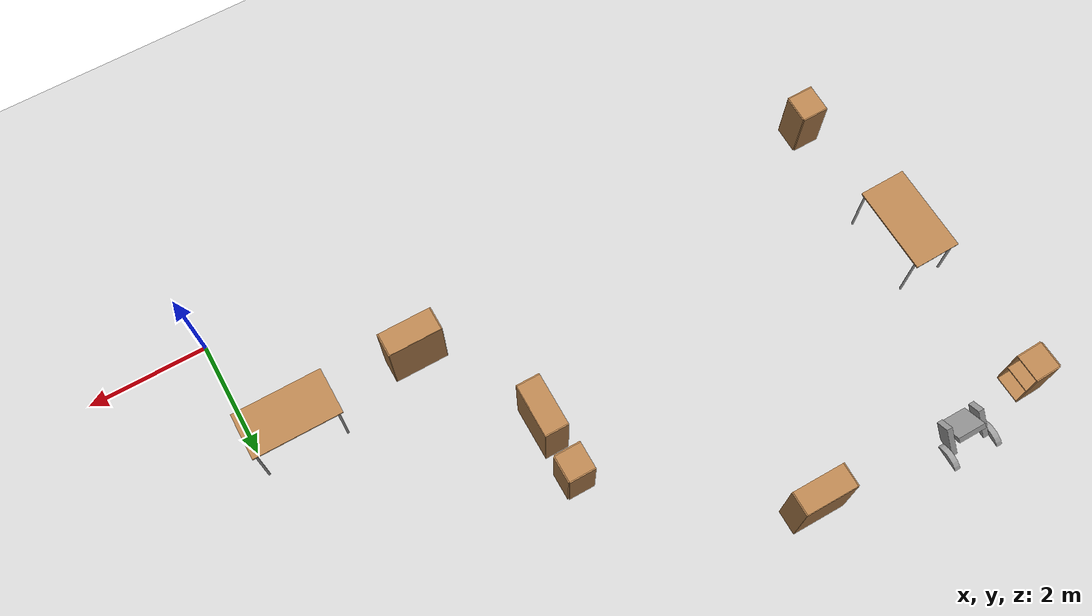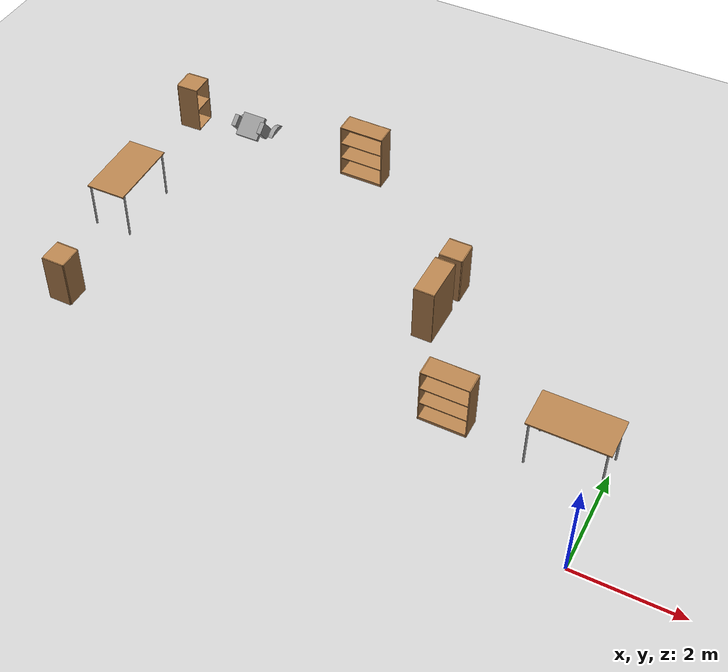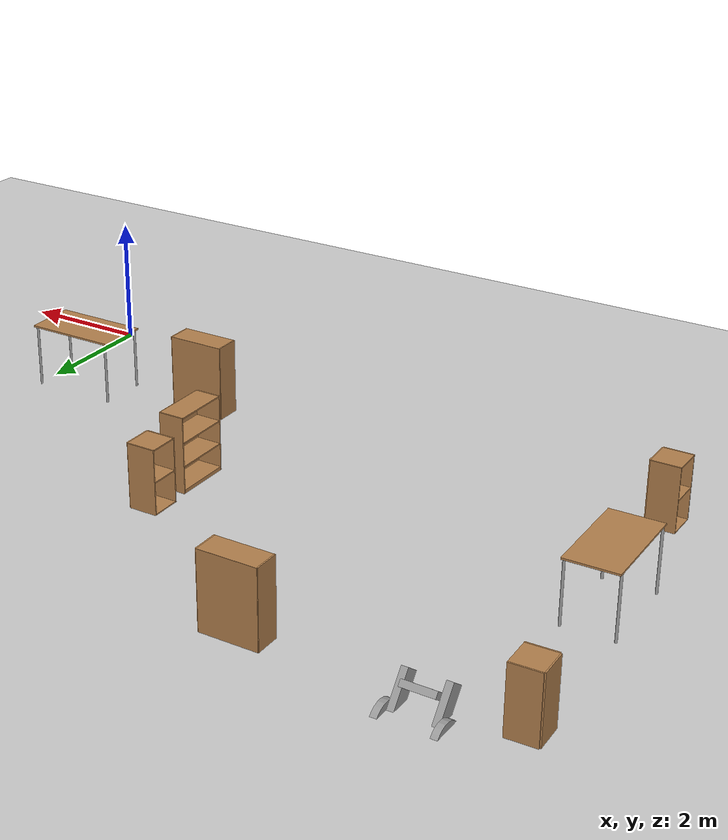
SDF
<sdf version="1.6">
 <world name="default">
  <model name="ground_plane">
   <static>1</static>
   <link name="link">
    <collision name="collision">
     <geometry><plane><normal>0 0 1</normal><size>100 100</size></plane></geometry>
     <surface><friction><ode><mu>100</mu><mu2>50</mu2></ode></friction></surface>
    </collision>
    <visual name="visual">
     <cast_shadows>0</cast_shadows>
     <geometry><plane><normal>0 0 1</normal><size>100 100</size></plane></geometry>
     <material>
      <script><uri>file://media/materials/scripts/gazebo.material</uri><name>Gazebo/Grey</name></script>
     </material>
    </visual>
   </link>
  </model>
  <model name="table">
   <static>1</static>
   <link name="link">
    <collision name="surface">
     <pose>0 0 1 0 -0 0</pose>
     <geometry><box><size>1.5 0.8 0.03</size></box></geometry>
     <surface><friction><ode><mu>0.6</mu><mu2>0.6</mu2></ode></friction></surface>
    </collision>
    <visual name="visual1">
     <pose>0 0 1 0 -0 0</pose>
     <geometry><box><size>1.5 0.8 0.03</size></box></geometry>
     <material>
      <script><uri>file://media/materials/scripts/gazebo.material</uri><name>Gazebo/Wood</name></script>
     </material>
    </visual>
    <collision name="front_left_leg">
     <pose>0.68 0.38 0.5 0 -0 0</pose>
     <geometry><cylinder><radius>0.02</radius><length>1</length></cylinder></geometry>
    </collision>
    <visual name="front_left_leg">
     <pose>0.68 0.38 0.5 0 -0 0</pose>
     <geometry><cylinder><radius>0.02</radius><length>1</length></cylinder></geometry>
     <material>
      <script><uri>file://media/materials/scripts/gazebo.material</uri><name>Gazebo/Grey</name></script>
     </material>
    </visual>
    <collision name="front_right_leg">
     <pose>0.68 -0.38 0.5 0 -0 0</pose>
     <geometry><cylinder><radius>0.02</radius><length>1</length></cylinder></geometry>
    </collision>
    <visual name="front_right_leg">
     <pose>0.68 -0.38 0.5 0 -0 0</pose>
     <geometry><cylinder><radius>0.02</radius><length>1</length></cylinder></geometry>
     <material>
      <script><uri>file://media/materials/scripts/gazebo.material</uri><name>Gazebo/Grey</name></script>
     </material>
    </visual>
    <collision name="back_right_leg">
     <pose>-0.68 -0.38 0.5 0 -0 0</pose>
     <geometry><cylinder><radius>0.02</radius><length>1</length></cylinder></geometry>
    </collision>
    <visual name="back_right_leg">
     <pose>-0.68 -0.38 0.5 0 -0 0</pose>
     <geometry><cylinder><radius>0.02</radius><length>1</length></cylinder></geometry>
     <material>
      <script><uri>file://media/materials/scripts/gazebo.material</uri><name>Gazebo/Grey</name></script>
     </material>
    </visual>
    <collision name="back_left_leg">
     <pose>-0.68 0.38 0.5 0 -0 0</pose>
     <geometry><cylinder><radius>0.02</radius><length>1</length></cylinder></geometry>
    </collision>
    <visual name="back_left_leg">
     <pose>-0.68 0.38 0.5 0 -0 0</pose>
     <geometry><cylinder><radius>0.02</radius><length>1</length></cylinder></geometry>
     <material>
      <script><uri>file://media/materials/scripts/gazebo.material</uri><name>Gazebo/Grey</name></script>
     </material>
    </visual>
   </link>
   <pose>-0.6977 2.01004 0 0 -0 0</pose>
  </model>
  <model name="table_0">
   <static>1</static>
   <link name="link">
    <collision name="surface">
     <pose>0 0 1 0 -0 0</pose>
     <geometry><box><size>1.5 0.8 0.03</size></box></geometry>
     <surface><friction><ode><mu>0.6</mu><mu2>0.6</mu2></ode></friction></surface>
    </collision>
    <visual name="visual1">
     <pose>0 0 1 0 -0 0</pose>
     <geometry><box><size>1.5 0.8 0.03</size></box></geometry>
     <material>
      <script><uri>file://media/materials/scripts/gazebo.material</uri><name>Gazebo/Wood</name></script>
     </material>
    </visual>
    <collision name="front_left_leg">
     <pose>0.68 0.38 0.5 0 -0 0</pose>
     <geometry><cylinder><radius>0.02</radius><length>1</length></cylinder></geometry>
    </collision>
    <visual name="front_left_leg">
     <pose>0.68 0.38 0.5 0 -0 0</pose>
     <geometry><cylinder><radius>0.02</radius><length>1</length></cylinder></geometry>
     <material>
      <script><uri>file://media/materials/scripts/gazebo.material</uri><name>Gazebo/Grey</name></script>
     </material>
    </visual>
    <collision name="front_right_leg">
     <pose>0.68 -0.38 0.5 0 -0 0</pose>
     <geometry><cylinder><radius>0.02</radius><length>1</length></cylinder></geometry>
    </collision>
    <visual name="front_right_leg">
     <pose>0.68 -0.38 0.5 0 -0 0</pose>
     <geometry><cylinder><radius>0.02</radius><length>1</length></cylinder></geometry>
     <material>
      <script><uri>file://media/materials/scripts/gazebo.material</uri><name>Gazebo/Grey</name></script>
     </material>
    </visual>
    <collision name="back_right_leg">
     <pose>-0.68 -0.38 0.5 0 -0 0</pose>
     <geometry><cylinder><radius>0.02</radius><length>1</length></cylinder></geometry>
    </collision>
    <visual name="back_right_leg">
     <pose>-0.68 -0.38 0.5 0 -0 0</pose>
     <geometry><cylinder><radius>0.02</radius><length>1</length></cylinder></geometry>
     <material>
      <script><uri>file://media/materials/scripts/gazebo.material</uri><name>Gazebo/Grey</name></script>
     </material>
    </visual>
    <collision name="back_left_leg">
     <pose>-0.68 0.38 0.5 0 -0 0</pose>
     <geometry><cylinder><radius>0.02</radius><length>1</length></cylinder></geometry>
    </collision>
    <visual name="back_left_leg">
     <pose>-0.68 0.38 0.5 0 -0 0</pose>
     <geometry><cylinder><radius>0.02</radius><length>1</length></cylinder></geometry>
     <material>
      <script><uri>file://media/materials/scripts/gazebo.material</uri><name>Gazebo/Grey</name></script>
     </material>
    </visual>
   </link>
   <pose>-10.7102 3.95299 0 0 0 -1.5538</pose>
  </model>
  <model name="robot">
   <link name="link_0">
    <inertial>
     <mass>1</mass>
     <inertia>
      <ixx>0.166667</ixx>
      <ixy>0</ixy>
      <ixz>0</ixz>
      <iyy>0.166667</iyy>
      <iyz>0</iyz>
      <izz>0.166667</izz>
     </inertia>
    </inertial>
    <pose>-0.275 0.827554 -0.060043 0 -0 0</pose>
    <visual name="visual">
     <geometry><box><size>0.5 0.5 0.1</size></box></geometry>
     <material>
      <lighting>1</lighting>
      <script><uri>file://media/materials/scripts/gazebo.material</uri><name>Gazebo/Grey</name></script>
      <shader type="pixel"><normal_map>__default__</normal_map></shader>
      <ambient>0.3 0.3 0.3 1</ambient>
      <diffuse>0.7 0.7 0.7 1</diffuse>
      <specular>0.01 0.01 0.01 1</specular>
      <emissive>0 0 0 1</emissive>
     </material>
    </visual>
    <collision name="collision">
     <geometry><box><size>0.5 0.5 0.1</size></box></geometry>
     <surface>
      <friction>
       <ode><mu>1</mu><mu2>1</mu2><fdir1>0 0 0</fdir1><slip1>0</slip1><slip2>0</slip2></ode>
       <torsional>
        <coefficient>1</coefficient>
        <patch_radius>0</patch_radius>
        <surface_radius>0</surface_radius>
        <use_patch_radius>1</use_patch_radius>
        <ode><slip>0</slip></ode>
       </torsional>
      </friction>
      <bounce><restitution_coefficient>0</restitution_coefficient><threshold>1e+06</threshold></bounce>
      <contact>
       <collide_without_contact>0</collide_without_contact>
       <collide_without_contact_bitmask>1</collide_without_contact_bitmask>
       <collide_bitmask>1</collide_bitmask>
       <ode>
        <soft_cfm>0</soft_cfm>
        <soft_erp>0.2</soft_erp>
        <kp>1e+13</kp>
        <kd>1</kd>
        <max_vel>0.01</max_vel>
        <min_depth>0</min_depth>
       </ode>
       <bullet>
        <split_impulse>1</split_impulse>
        <split_impulse_penetration_threshold>-0.01</split_impulse_penetration_threshold>
        <soft_cfm>0</soft_cfm>
        <soft_erp>0.2</soft_erp>
        <kp>1e+13</kp>
        <kd>1</kd>
       </bullet>
      </contact>
     </surface>
    </collision>
   </link>
   <link name="link_1">
    <inertial>
     <mass>1</mass>
     <inertia>
      <ixx>0.166667</ixx>
      <ixy>0</ixy>
      <ixz>0</ixz>
      <iyy>0.166667</iyy>
      <iyz>0</iyz>
      <izz>0.166667</izz>
     </inertia>
    </inertial>
    <pose>0.025 0.827554 -0.260043 0 -0 0</pose>
    <visual name="visual">
     <geometry><box><size>0.1 0.25 0.8</size></box></geometry>
     <material>
      <lighting>1</lighting>
      <script><uri>file://media/materials/scripts/gazebo.material</uri><name>Gazebo/Grey</name></script>
      <shader type="pixel"><normal_map>__default__</normal_map></shader>
      <ambient>0.3 0.3 0.3 1</ambient>
      <diffuse>0.7 0.7 0.7 1</diffuse>
      <specular>0.01 0.01 0.01 1</specular>
      <emissive>0 0 0 1</emissive>
     </material>
    </visual>
    <collision name="collision">
     <geometry><box><size>0.1 0.25 0.8</size></box></geometry>
     <surface>
      <friction>
       <ode><mu>1</mu><mu2>1</mu2><fdir1>0 0 0</fdir1><slip1>0</slip1><slip2>0</slip2></ode>
       <torsional>
        <coefficient>1</coefficient>
        <patch_radius>0</patch_radius>
        <surface_radius>0</surface_radius>
        <use_patch_radius>1</use_patch_radius>
        <ode><slip>0</slip></ode>
       </torsional>
      </friction>
      <bounce><restitution_coefficient>0</restitution_coefficient><threshold>1e+06</threshold></bounce>
      <contact>
       <collide_without_contact>0</collide_without_contact>
       <collide_without_contact_bitmask>1</collide_without_contact_bitmask>
       <collide_bitmask>1</collide_bitmask>
       <ode>
        <soft_cfm>0</soft_cfm>
        <soft_erp>0.2</soft_erp>
        <kp>1e+13</kp>
        <kd>1</kd>
        <max_vel>0.01</max_vel>
        <min_depth>0</min_depth>
       </ode>
       <bullet>
        <split_impulse>1</split_impulse>
        <split_impulse_penetration_threshold>-0.01</split_impulse_penetration_threshold>
        <soft_cfm>0</soft_cfm>
        <soft_erp>0.2</soft_erp>
        <kp>1e+13</kp>
        <kd>1</kd>
       </bullet>
      </contact>
     </surface>
    </collision>
   </link>
   <link name="link_1_0">
    <inertial>
     <mass>1</mass>
     <inertia><ixx>0.145833</ixx><ixy>0</ixy><ixz>0</ixz><iyy>0.145833</iyy><iyz>0</iyz><izz>0.125</izz></inertia>
    </inertial>
    <pose>0.125 0.827554 -0.560043 0 1.57 0</pose>
    <visual name="visual">
     <geometry><cylinder><radius>0.3</radius><length>0.1</length></cylinder></geometry>
     <material>
      <lighting>1</lighting>
      <script><uri>file://media/materials/scripts/gazebo.material</uri><name>Gazebo/Grey</name></script>
      <shader type="pixel"><normal_map>__default__</normal_map></shader>
      <ambient>0.3 0.3 0.3 1</ambient>
      <diffuse>0.7 0.7 0.7 1</diffuse>
      <specular>0.01 0.01 0.01 1</specular>
      <emissive>0 0 0 1</emissive>
     </material>
    </visual>
    <collision name="collision">
     <geometry><cylinder><radius>0.3</radius><length>0.1</length></cylinder></geometry>
     <surface>
      <friction>
       <ode><mu>1</mu><mu2>1</mu2><fdir1>0 0 0</fdir1><slip1>0</slip1><slip2>0</slip2></ode>
       <torsional>
        <coefficient>1</coefficient>
        <patch_radius>0</patch_radius>
        <surface_radius>0</surface_radius>
        <use_patch_radius>1</use_patch_radius>
        <ode><slip>0</slip></ode>
       </torsional>
      </friction>
      <bounce><restitution_coefficient>0</restitution_coefficient><threshold>1e+06</threshold></bounce>
      <contact>
       <collide_without_contact>0</collide_without_contact>
       <collide_without_contact_bitmask>1</collide_without_contact_bitmask>
       <collide_bitmask>1</collide_bitmask>
       <ode>
        <soft_cfm>0</soft_cfm>
        <soft_erp>0.2</soft_erp>
        <kp>1e+13</kp>
        <kd>1</kd>
        <max_vel>0.01</max_vel>
        <min_depth>0</min_depth>
       </ode>
       <bullet>
        <split_impulse>1</split_impulse>
        <split_impulse_penetration_threshold>-0.01</split_impulse_penetration_threshold>
        <soft_cfm>0</soft_cfm>
        <soft_erp>0.2</soft_erp>
        <kp>1e+13</kp>
        <kd>1</kd>
       </bullet>
      </contact>
     </surface>
    </collision>
   </link>
   <link name="link_1_0_clone">
    <inertial>
     <mass>1</mass>
     <inertia><ixx>0.145833</ixx><ixy>0</ixy><ixz>0</ixz><iyy>0.145833</iyy><iyz>0</iyz><izz>0.125</izz></inertia>
    </inertial>
    <pose>-0.675 0.827554 -0.560043 0 1.57 0</pose>
    <visual name="visual_0">
     <geometry><cylinder><radius>0.3</radius><length>0.1</length></cylinder></geometry>
     <material>
      <lighting>1</lighting>
      <script><uri>file://media/materials/scripts/gazebo.material</uri><name>Gazebo/Grey</name></script>
      <shader type="pixel"><normal_map>__default__</normal_map></shader>
      <ambient>0.3 0.3 0.3 1</ambient>
      <diffuse>0.7 0.7 0.7 1</diffuse>
      <specular>0.01 0.01 0.01 1</specular>
      <emissive>0 0 0 1</emissive>
     </material>
    </visual>
    <collision name="collision">
     <geometry><cylinder><radius>0.3</radius><length>0.1</length></cylinder></geometry>
     <surface>
      <friction>
       <ode><mu>1</mu><mu2>1</mu2><fdir1>0 0 0</fdir1><slip1>0</slip1><slip2>0</slip2></ode>
       <torsional>
        <coefficient>1</coefficient>
        <patch_radius>0</patch_radius>
        <surface_radius>0</surface_radius>
        <use_patch_radius>1</use_patch_radius>
        <ode><slip>0</slip></ode>
       </torsional>
      </friction>
      <bounce><restitution_coefficient>0</restitution_coefficient><threshold>1e+06</threshold></bounce>
      <contact>
       <collide_without_contact>0</collide_without_contact>
       <collide_without_contact_bitmask>1</collide_without_contact_bitmask>
       <collide_bitmask>1</collide_bitmask>
       <ode>
        <soft_cfm>0</soft_cfm>
        <soft_erp>0.2</soft_erp>
        <kp>1e+13</kp>
        <kd>1</kd>
        <max_vel>0.01</max_vel>
        <min_depth>0</min_depth>
       </ode>
       <bullet>
        <split_impulse>1</split_impulse>
        <split_impulse_penetration_threshold>-0.01</split_impulse_penetration_threshold>
        <soft_cfm>0</soft_cfm>
        <soft_erp>0.2</soft_erp>
        <kp>1e+13</kp>
        <kd>1</kd>
       </bullet>
      </contact>
     </surface>
    </collision>
   </link>
   <link name="link_1_clone">
    <inertial>
     <mass>1</mass>
     <inertia>
      <ixx>0.166667</ixx>
      <ixy>0</ixy>
      <ixz>0</ixz>
      <iyy>0.166667</iyy>
      <iyz>0</iyz>
      <izz>0.166667</izz>
     </inertia>
    </inertial>
    <pose>-0.575 0.827554 -0.260043 0 -0 0</pose>
    <visual name="visual">
     <geometry><box><size>0.1 0.25 0.81</size></box></geometry>
     <material>
      <lighting>1</lighting>
      <script><uri>file://media/materials/scripts/gazebo.material</uri><name>Gazebo/Grey</name></script>
      <shader type="pixel"><normal_map>__default__</normal_map></shader>
      <ambient>0.3 0.3 0.3 1</ambient>
      <diffuse>0.7 0.7 0.7 1</diffuse>
      <specular>0.01 0.01 0.01 1</specular>
      <emissive>0 0 0 1</emissive>
     </material>
    </visual>
    <collision name="collision">
     <geometry><box><size>0.1 0.25 0.8</size></box></geometry>
     <surface>
      <friction>
       <ode><mu>1</mu><mu2>1</mu2><fdir1>0 0 0</fdir1><slip1>0</slip1><slip2>0</slip2></ode>
       <torsional>
        <coefficient>1</coefficient>
        <patch_radius>0</patch_radius>
        <surface_radius>0</surface_radius>
        <use_patch_radius>1</use_patch_radius>
        <ode><slip>0</slip></ode>
       </torsional>
      </friction>
      <bounce><restitution_coefficient>0</restitution_coefficient><threshold>1e+06</threshold></bounce>
      <contact>
       <collide_without_contact>0</collide_without_contact>
       <collide_without_contact_bitmask>1</collide_without_contact_bitmask>
       <collide_bitmask>1</collide_bitmask>
       <ode>
        <soft_cfm>0</soft_cfm>
        <soft_erp>0.2</soft_erp>
        <kp>1e+13</kp>
        <kd>1</kd>
        <max_vel>0.01</max_vel>
        <min_depth>0</min_depth>
       </ode>
       <bullet>
        <split_impulse>1</split_impulse>
        <split_impulse_penetration_threshold>-0.01</split_impulse_penetration_threshold>
        <soft_cfm>0</soft_cfm>
        <soft_erp>0.2</soft_erp>
        <kp>1e+13</kp>
        <kd>1</kd>
       </bullet>
      </contact>
     </surface>
    </collision>
   </link>
   <joint name="link_0_JOINT_0_0" type="revolute">
    <parent>link_0</parent>
    <child>link_1_clone</child>
    <pose>0 0 0.2 0 -0 0</pose>
    <axis>
     <xyz>1 0 0</xyz>
     <use_parent_model_frame>0</use_parent_model_frame>
     <limit>
      <lower>-1.79769e+308</lower>
      <upper>1.79769e+308</upper>
      <effort>-1</effort>
      <velocity>-1</velocity>
     </limit>
     <dynamics>
      <spring_reference>0</spring_reference>
      <spring_stiffness>0</spring_stiffness>
      <damping>0</damping>
      <friction>0</friction>
     </dynamics>
    </axis>
    <physics>
     <ode><limit><cfm>0</cfm><erp>0.2</erp></limit><suspension><cfm>0</cfm><erp>0.2</erp></suspension></ode>
    </physics>
   </joint>
   <joint name="link_0_JOINT_2" type="revolute">
    <parent>link_0</parent>
    <child>link_1</child>
    <pose>0 0 0.2 0 -0 0</pose>
    <axis>
     <xyz>1 0 0</xyz>
     <use_parent_model_frame>0</use_parent_model_frame>
     <limit>
      <lower>-1.79769e+308</lower>
      <upper>1.79769e+308</upper>
      <effort>-1</effort>
      <velocity>-1</velocity>
     </limit>
     <dynamics>
      <spring_reference>0</spring_reference>
      <spring_stiffness>0</spring_stiffness>
      <damping>0</damping>
      <friction>0</friction>
     </dynamics>
    </axis>
    <physics>
     <ode><limit><cfm>0</cfm><erp>0.2</erp></limit><suspension><cfm>0</cfm><erp>0.2</erp></suspension></ode>
    </physics>
   </joint>
   <joint name="link_1_JOINT_3" type="revolute">
    <parent>link_1</parent>
    <child>link_1_0</child>
    <axis>
     <xyz>0 0 1</xyz>
     <use_parent_model_frame>0</use_parent_model_frame>
     <limit>
      <lower>-1.79769e+308</lower>
      <upper>1.79769e+308</upper>
      <effort>-1</effort>
      <velocity>-1</velocity>
     </limit>
     <dynamics>
      <spring_reference>0</spring_reference>
      <spring_stiffness>0</spring_stiffness>
      <damping>0</damping>
      <friction>0</friction>
     </dynamics>
    </axis>
    <physics>
     <ode><limit><cfm>0</cfm><erp>0.2</erp></limit><suspension><cfm>0</cfm><erp>0.2</erp></suspension></ode>
    </physics>
   </joint>
   <joint name="link_1_clone_JOINT_1" type="revolute">
    <parent>link_1_clone</parent>
    <child>link_1_0_clone</child>
    <axis>
     <xyz>0 0 1</xyz>
     <use_parent_model_frame>0</use_parent_model_frame>
     <limit>
      <lower>-1.79769e+308</lower>
      <upper>1.79769e+308</upper>
      <effort>-1</effort>
      <velocity>-1</velocity>
     </limit>
     <dynamics>
      <spring_reference>0</spring_reference>
      <spring_stiffness>0</spring_stiffness>
      <damping>0</damping>
      <friction>0</friction>
     </dynamics>
    </axis>
    <physics>
     <ode><limit><cfm>0</cfm><erp>0.2</erp></limit><suspension><cfm>0</cfm><erp>0.2</erp></suspension></ode>
    </physics>
   </joint>
   <static>0</static>
   <pose>-9.48709 6.36861 -0.263257 0.652532 -0 0</pose>
  </model>
  <model name="cabinet">
   <static>1</static>
   <link name="cabinet_bottom_plate">
    <inertial>
     <pose>0 0 -1 0 -0 0</pose>
     <inertia><ixx>2.05</ixx><ixy>0</ixy><ixz>0</ixz><iyy>2.05</iyy><iyz>0</iyz><izz>2.05</izz></inertia>
     <mass>25</mass>
    </inertial>
    <collision name="cabinet_bottom_plate_geom">
     <pose>0 0 0.01 0 -0 0</pose>
     <geometry><box><size>0.45 0.45 0.02</size></box></geometry>
    </collision>
    <visual name="cabinet_bottom_plate_geom_visual">
     <pose>0 0 0.01 0 -0 0</pose>
     <geometry><box><size>0.45 0.45 0.02</size></box></geometry>
     <material>
      <script><uri>file://media/materials/scripts/gazebo.material</uri><name>Gazebo/Wood</name></script>
     </material>
    </visual>
    <collision name="cabinet_bottom_plate_geom_cabinet_back_plate">
     <pose>0.235 0 0.51 0 -0 0</pose>
     <geometry><box><size>0.02 0.45 1.02</size></box></geometry>
    </collision>
    <visual name="cabinet_bottom_plate_geom_cabinet_back_plate_visual">
     <pose>0.235 0 0.51 0 -0 0</pose>
     <geometry><box><size>0.02 0.45 1.02</size></box></geometry>
     <material>
      <script><uri>file://media/materials/scripts/gazebo.material</uri><name>Gazebo/Wood</name></script>
     </material>
    </visual>
    <collision name="cabinet_bottom_plate_geom_cabinet_left_plate">
     <pose>0 0.235 0.51 0 -0 0</pose>
     <geometry><box><size>0.45 0.02 1.02</size></box></geometry>
    </collision>
    <visual name="cabinet_bottom_plate_geom_cabinet_left_plate_visual">
     <pose>0 0.235 0.51 0 -0 0</pose>
     <geometry><box><size>0.45 0.02 1.02</size></box></geometry>
     <material>
      <script><uri>file://media/materials/scripts/gazebo.material</uri><name>Gazebo/Wood</name></script>
     </material>
    </visual>
    <collision name="cabinet_bottom_plate_geom_cabinet_middle_plate">
     <pose>0 0 0.51 0 -0 0</pose>
     <geometry><box><size>0.45 0.45 0.02</size></box></geometry>
    </collision>
    <visual name="cabinet_bottom_plate_geom_cabinet_middle_plate_visual">
     <pose>0 0 0.51 0 -0 0</pose>
     <geometry><box><size>0.45 0.45 0.02</size></box></geometry>
     <material>
      <script><uri>file://media/materials/scripts/gazebo.material</uri><name>Gazebo/Wood</name></script>
     </material>
    </visual>
    <collision name="cabinet_bottom_plate_geom_cabinet_right_plate">
     <pose>0 -0.235 0.51 0 -0 0</pose>
     <geometry><box><size>0.45 0.02 1.02</size></box></geometry>
    </collision>
    <visual name="cabinet_bottom_plate_geom_cabinet_right_plate_visual">
     <pose>0 -0.235 0.51 0 -0 0</pose>
     <geometry><box><size>0.45 0.02 1.02</size></box></geometry>
     <material>
      <script><uri>file://media/materials/scripts/gazebo.material</uri><name>Gazebo/Wood</name></script>
     </material>
    </visual>
    <collision name="cabinet_bottom_plate_geom_cabinet_top_plate">
     <pose>0 0 1.01 0 -0 0</pose>
     <geometry><box><size>0.45 0.45 0.02</size></box></geometry>
    </collision>
    <visual name="cabinet_bottom_plate_geom_cabinet_top_plate_visual">
     <pose>0 0 1.01 0 -0 0</pose>
     <geometry><box><size>0.45 0.45 0.02</size></box></geometry>
     <material>
      <script><uri>file://media/materials/scripts/gazebo.material</uri><name>Gazebo/Wood</name></script>
     </material>
    </visual>
   </link>
   <pose>-11.0265 6.90263 0 0 0 -3.1075</pose>
  </model>
  <model name="cabinet_0">
   <static>1</static>
   <link name="cabinet_bottom_plate">
    <inertial>
     <pose>0 0 -1 0 -0 0</pose>
     <inertia><ixx>2.05</ixx><ixy>0</ixy><ixz>0</ixz><iyy>2.05</iyy><iyz>0</iyz><izz>2.05</izz></inertia>
     <mass>25</mass>
    </inertial>
    <collision name="cabinet_bottom_plate_geom">
     <pose>0 0 0.01 0 -0 0</pose>
     <geometry><box><size>0.45 0.45 0.02</size></box></geometry>
    </collision>
    <visual name="cabinet_bottom_plate_geom_visual">
     <pose>0 0 0.01 0 -0 0</pose>
     <geometry><box><size>0.45 0.45 0.02</size></box></geometry>
     <material>
      <script><uri>file://media/materials/scripts/gazebo.material</uri><name>Gazebo/Wood</name></script>
     </material>
    </visual>
    <collision name="cabinet_bottom_plate_geom_cabinet_back_plate">
     <pose>0.235 0 0.51 0 -0 0</pose>
     <geometry><box><size>0.02 0.45 1.02</size></box></geometry>
    </collision>
    <visual name="cabinet_bottom_plate_geom_cabinet_back_plate_visual">
     <pose>0.235 0 0.51 0 -0 0</pose>
     <geometry><box><size>0.02 0.45 1.02</size></box></geometry>
     <material>
      <script><uri>file://media/materials/scripts/gazebo.material</uri><name>Gazebo/Wood</name></script>
     </material>
    </visual>
    <collision name="cabinet_bottom_plate_geom_cabinet_left_plate">
     <pose>0 0.235 0.51 0 -0 0</pose>
     <geometry><box><size>0.45 0.02 1.02</size></box></geometry>
    </collision>
    <visual name="cabinet_bottom_plate_geom_cabinet_left_plate_visual">
     <pose>0 0.235 0.51 0 -0 0</pose>
     <geometry><box><size>0.45 0.02 1.02</size></box></geometry>
     <material>
      <script><uri>file://media/materials/scripts/gazebo.material</uri><name>Gazebo/Wood</name></script>
     </material>
    </visual>
    <collision name="cabinet_bottom_plate_geom_cabinet_middle_plate">
     <pose>0 0 0.51 0 -0 0</pose>
     <geometry><box><size>0.45 0.45 0.02</size></box></geometry>
    </collision>
    <visual name="cabinet_bottom_plate_geom_cabinet_middle_plate_visual">
     <pose>0 0 0.51 0 -0 0</pose>
     <geometry><box><size>0.45 0.45 0.02</size></box></geometry>
     <material>
      <script><uri>file://media/materials/scripts/gazebo.material</uri><name>Gazebo/Wood</name></script>
     </material>
    </visual>
    <collision name="cabinet_bottom_plate_geom_cabinet_right_plate">
     <pose>0 -0.235 0.51 0 -0 0</pose>
     <geometry><box><size>0.45 0.02 1.02</size></box></geometry>
    </collision>
    <visual name="cabinet_bottom_plate_geom_cabinet_right_plate_visual">
     <pose>0 -0.235 0.51 0 -0 0</pose>
     <geometry><box><size>0.45 0.02 1.02</size></box></geometry>
     <material>
      <script><uri>file://media/materials/scripts/gazebo.material</uri><name>Gazebo/Wood</name></script>
     </material>
    </visual>
    <collision name="cabinet_bottom_plate_geom_cabinet_top_plate">
     <pose>0 0 1.01 0 -0 0</pose>
     <geometry><box><size>0.45 0.45 0.02</size></box></geometry>
    </collision>
    <visual name="cabinet_bottom_plate_geom_cabinet_top_plate_visual">
     <pose>0 0 1.01 0 -0 0</pose>
     <geometry><box><size>0.45 0.45 0.02</size></box></geometry>
     <material>
      <script><uri>file://media/materials/scripts/gazebo.material</uri><name>Gazebo/Wood</name></script>
     </material>
    </visual>
   </link>
   <pose>-10.4572 1.4016 0 0 -0 0</pose>
  </model>
  <model name="bookshelf">
   <static>1</static>
   <link name="link">
    <inertial><mass>1</mass></inertial>
    <collision name="back">
     <pose>0 0.005 0.6 0 -0 0</pose>
     <geometry><box><size>0.9 0.01 1.2</size></box></geometry>
    </collision>
    <visual name="visual1">
     <pose>0 0.005 0.6 0 -0 0</pose>
     <geometry><box><size>0.9 0.01 1.2</size></box></geometry>
     <material>
      <script><uri>file://media/materials/scripts/gazebo.material</uri><name>Gazebo/Wood</name></script>
     </material>
    </visual>
    <collision name="left_side">
     <pose>0.45 -0.195 0.6 0 -0 0</pose>
     <geometry><box><size>0.02 0.4 1.2</size></box></geometry>
    </collision>
    <visual name="visual2">
     <pose>0.45 -0.195 0.6 0 -0 0</pose>
     <geometry><box><size>0.02 0.4 1.2</size></box></geometry>
     <material>
      <script><uri>file://media/materials/scripts/gazebo.material</uri><name>Gazebo/Wood</name></script>
     </material>
    </visual>
    <collision name="right_side">
     <pose>-0.45 -0.195 0.6 0 -0 0</pose>
     <geometry><box><size>0.02 0.4 1.2</size></box></geometry>
    </collision>
    <visual name="visual3">
     <pose>-0.45 -0.195 0.6 0 -0 0</pose>
     <geometry><box><size>0.02 0.4 1.2</size></box></geometry>
     <material>
      <script><uri>file://media/materials/scripts/gazebo.material</uri><name>Gazebo/Wood</name></script>
     </material>
    </visual>
    <collision name="bottom">
     <pose>0 -0.195 0.03 0 -0 0</pose>
     <geometry><box><size>0.88 0.4 0.06</size></box></geometry>
    </collision>
    <visual name="visual4">
     <pose>0 -0.195 0.03 0 -0 0</pose>
     <geometry><box><size>0.88 0.4 0.06</size></box></geometry>
     <material>
      <script><uri>file://media/materials/scripts/gazebo.material</uri><name>Gazebo/Wood</name></script>
     </material>
    </visual>
    <collision name="top">
     <pose>0 -0.195 1.19 0 -0 0</pose>
     <geometry><box><size>0.88 0.4 0.02</size></box></geometry>
    </collision>
    <visual name="visual5">
     <pose>0 -0.195 1.19 0 -0 0</pose>
     <geometry><box><size>0.88 0.4 0.02</size></box></geometry>
     <material>
      <script><uri>file://media/materials/scripts/gazebo.material</uri><name>Gazebo/Wood</name></script>
     </material>
    </visual>
    <collision name="low_shelf">
     <pose>0 -0.195 0.43 0 -0 0</pose>
     <geometry><box><size>0.88 0.4 0.02</size></box></geometry>
    </collision>
    <visual name="visual6">
     <pose>0 -0.195 0.43 0 -0 0</pose>
     <geometry><box><size>0.88 0.4 0.02</size></box></geometry>
     <material>
      <script><uri>file://media/materials/scripts/gazebo.material</uri><name>Gazebo/Wood</name></script>
     </material>
    </visual>
    <collision name="high_shelf">
     <pose>0 -0.195 0.8 0 -0 0</pose>
     <geometry><box><size>0.88 0.4 0.02</size></box></geometry>
    </collision>
    <visual name="visual7">
     <pose>0 -0.195 0.8 0 -0 0</pose>
     <geometry><box><size>0.88 0.4 0.02</size></box></geometry>
     <material>
      <script><uri>file://media/materials/scripts/gazebo.material</uri><name>Gazebo/Wood</name></script>
     </material>
    </visual>
   </link>
   <pose>-7.03755 7.17549 0 0 -0 0</pose>
  </model>
  <model name="cabinet_clone_0_clone">
   <static>1</static>
   <link name="cabinet_bottom_plate">
    <inertial>
     <pose>0 0 -1 0 -0 0</pose>
     <inertia><ixx>2.05</ixx><ixy>0</ixy><ixz>0</ixz><iyy>2.05</iyy><iyz>0</iyz><izz>2.05</izz></inertia>
     <mass>25</mass>
    </inertial>
    <collision name="cabinet_bottom_plate_geom">
     <pose>0 0 0.01 0 -0 0</pose>
     <geometry><box><size>0.45 0.45 0.02</size></box></geometry>
    </collision>
    <visual name="cabinet_bottom_plate_geom_visual">
     <pose>0 0 0.01 0 -0 0</pose>
     <geometry><box><size>0.45 0.45 0.02</size></box></geometry>
     <material>
      <script><uri>file://media/materials/scripts/gazebo.material</uri><name>Gazebo/Wood</name></script>
     </material>
    </visual>
    <collision name="cabinet_bottom_plate_geom_cabinet_back_plate">
     <pose>0.235 0 0.51 0 -0 0</pose>
     <geometry><box><size>0.02 0.45 1.02</size></box></geometry>
    </collision>
    <visual name="cabinet_bottom_plate_geom_cabinet_back_plate_visual">
     <pose>0.235 0 0.51 0 -0 0</pose>
     <geometry><box><size>0.02 0.45 1.02</size></box></geometry>
     <material>
      <script><uri>file://media/materials/scripts/gazebo.material</uri><name>Gazebo/Wood</name></script>
     </material>
    </visual>
    <collision name="cabinet_bottom_plate_geom_cabinet_left_plate">
     <pose>0 0.235 0.51 0 -0 0</pose>
     <geometry><box><size>0.45 0.02 1.02</size></box></geometry>
    </collision>
    <visual name="cabinet_bottom_plate_geom_cabinet_left_plate_visual">
     <pose>0 0.235 0.51 0 -0 0</pose>
     <geometry><box><size>0.45 0.02 1.02</size></box></geometry>
     <material>
      <script><uri>file://media/materials/scripts/gazebo.material</uri><name>Gazebo/Wood</name></script>
     </material>
    </visual>
    <collision name="cabinet_bottom_plate_geom_cabinet_middle_plate">
     <pose>0 0 0.51 0 -0 0</pose>
     <geometry><box><size>0.45 0.45 0.02</size></box></geometry>
    </collision>
    <visual name="cabinet_bottom_plate_geom_cabinet_middle_plate_visual">
     <pose>0 0 0.51 0 -0 0</pose>
     <geometry><box><size>0.45 0.45 0.02</size></box></geometry>
     <material>
      <script><uri>file://media/materials/scripts/gazebo.material</uri><name>Gazebo/Wood</name></script>
     </material>
    </visual>
    <collision name="cabinet_bottom_plate_geom_cabinet_right_plate">
     <pose>0 -0.235 0.51 0 -0 0</pose>
     <geometry><box><size>0.45 0.02 1.02</size></box></geometry>
    </collision>
    <visual name="cabinet_bottom_plate_geom_cabinet_right_plate_visual">
     <pose>0 -0.235 0.51 0 -0 0</pose>
     <geometry><box><size>0.45 0.02 1.02</size></box></geometry>
     <material>
      <script><uri>file://media/materials/scripts/gazebo.material</uri><name>Gazebo/Wood</name></script>
     </material>
    </visual>
    <collision name="cabinet_bottom_plate_geom_cabinet_top_plate">
     <pose>0 0 1.01 0 -0 0</pose>
     <geometry><box><size>0.45 0.45 0.02</size></box></geometry>
    </collision>
    <visual name="cabinet_bottom_plate_geom_cabinet_top_plate_visual">
     <pose>0 0 1.01 0 -0 0</pose>
     <geometry><box><size>0.45 0.45 0.02</size></box></geometry>
     <material>
      <script><uri>file://media/materials/scripts/gazebo.material</uri><name>Gazebo/Wood</name></script>
     </material>
    </visual>
   </link>
   <pose>-4.09208 4.79103 0 0 -0 0</pose>
  </model>
  <model name="bookshelf_clone_0_clone">
   <static>1</static>
   <link name="link">
    <inertial><mass>1</mass></inertial>
    <collision name="back">
     <pose>0 0.005 0.6 0 -0 0</pose>
     <geometry><box><size>0.9 0.01 1.2</size></box></geometry>
    </collision>
    <visual name="visual1">
     <pose>0 0.005 0.6 0 -0 0</pose>
     <geometry><box><size>0.9 0.01 1.2</size></box></geometry>
     <material>
      <script><uri>file://media/materials/scripts/gazebo.material</uri><name>Gazebo/Wood</name></script>
     </material>
    </visual>
    <collision name="left_side">
     <pose>0.45 -0.195 0.6 0 -0 0</pose>
     <geometry><box><size>0.02 0.4 1.2</size></box></geometry>
    </collision>
    <visual name="visual2">
     <pose>0.45 -0.195 0.6 0 -0 0</pose>
     <geometry><box><size>0.02 0.4 1.2</size></box></geometry>
     <material>
      <script><uri>file://media/materials/scripts/gazebo.material</uri><name>Gazebo/Wood</name></script>
     </material>
    </visual>
    <collision name="right_side">
     <pose>-0.45 -0.195 0.6 0 -0 0</pose>
     <geometry><box><size>0.02 0.4 1.2</size></box></geometry>
    </collision>
    <visual name="visual3">
     <pose>-0.45 -0.195 0.6 0 -0 0</pose>
     <geometry><box><size>0.02 0.4 1.2</size></box></geometry>
     <material>
      <script><uri>file://media/materials/scripts/gazebo.material</uri><name>Gazebo/Wood</name></script>
     </material>
    </visual>
    <collision name="bottom">
     <pose>0 -0.195 0.03 0 -0 0</pose>
     <geometry><box><size>0.88 0.4 0.06</size></box></geometry>
    </collision>
    <visual name="visual4">
     <pose>0 -0.195 0.03 0 -0 0</pose>
     <geometry><box><size>0.88 0.4 0.06</size></box></geometry>
     <material>
      <script><uri>file://media/materials/scripts/gazebo.material</uri><name>Gazebo/Wood</name></script>
     </material>
    </visual>
    <collision name="top">
     <pose>0 -0.195 1.19 0 -0 0</pose>
     <geometry><box><size>0.88 0.4 0.02</size></box></geometry>
    </collision>
    <visual name="visual5">
     <pose>0 -0.195 1.19 0 -0 0</pose>
     <geometry><box><size>0.88 0.4 0.02</size></box></geometry>
     <material>
      <script><uri>file://media/materials/scripts/gazebo.material</uri><name>Gazebo/Wood</name></script>
     </material>
    </visual>
    <collision name="low_shelf">
     <pose>0 -0.195 0.43 0 -0 0</pose>
     <geometry><box><size>0.88 0.4 0.02</size></box></geometry>
    </collision>
    <visual name="visual6">
     <pose>0 -0.195 0.43 0 -0 0</pose>
     <geometry><box><size>0.88 0.4 0.02</size></box></geometry>
     <material>
      <script><uri>file://media/materials/scripts/gazebo.material</uri><name>Gazebo/Wood</name></script>
     </material>
    </visual>
    <collision name="high_shelf">
     <pose>0 -0.195 0.8 0 -0 0</pose>
     <geometry><box><size>0.88 0.4 0.02</size></box></geometry>
    </collision>
    <visual name="visual7">
     <pose>0 -0.195 0.8 0 -0 0</pose>
     <geometry><box><size>0.88 0.4 0.02</size></box></geometry>
     <material>
      <script><uri>file://media/materials/scripts/gazebo.material</uri><name>Gazebo/Wood</name></script>
     </material>
    </visual>
   </link>
   <pose>-3.88182 3.83125 0.000272 0 0 -1.57301</pose>
  </model>
  <model name="bookshelf_clone_0_clone_2">
   <static>1</static>
   <link name="link">
    <inertial><mass>1</mass></inertial>
    <collision name="back">
     <pose>0 0.005 0.6 0 -0 0</pose>
     <geometry><box><size>0.9 0.01 1.2</size></box></geometry>
    </collision>
    <visual name="visual1">
     <pose>0 0.005 0.6 0 -0 0</pose>
     <geometry><box><size>0.9 0.01 1.2</size></box></geometry>
     <material>
      <script><uri>file://media/materials/scripts/gazebo.material</uri><name>Gazebo/Wood</name></script>
     </material>
    </visual>
    <collision name="left_side">
     <pose>0.45 -0.195 0.6 0 -0 0</pose>
     <geometry><box><size>0.02 0.4 1.2</size></box></geometry>
    </collision>
    <visual name="visual2">
     <pose>0.45 -0.195 0.6 0 -0 0</pose>
     <geometry><box><size>0.02 0.4 1.2</size></box></geometry>
     <material>
      <script><uri>file://media/materials/scripts/gazebo.material</uri><name>Gazebo/Wood</name></script>
     </material>
    </visual>
    <collision name="right_side">
     <pose>-0.45 -0.195 0.6 0 -0 0</pose>
     <geometry><box><size>0.02 0.4 1.2</size></box></geometry>
    </collision>
    <visual name="visual3">
     <pose>-0.45 -0.195 0.6 0 -0 0</pose>
     <geometry><box><size>0.02 0.4 1.2</size></box></geometry>
     <material>
      <script><uri>file://media/materials/scripts/gazebo.material</uri><name>Gazebo/Wood</name></script>
     </material>
    </visual>
    <collision name="bottom">
     <pose>0 -0.195 0.03 0 -0 0</pose>
     <geometry><box><size>0.88 0.4 0.06</size></box></geometry>
    </collision>
    <visual name="visual4">
     <pose>0 -0.195 0.03 0 -0 0</pose>
     <geometry><box><size>0.88 0.4 0.06</size></box></geometry>
     <material>
      <script><uri>file://media/materials/scripts/gazebo.material</uri><name>Gazebo/Wood</name></script>
     </material>
    </visual>
    <collision name="top">
     <pose>0 -0.195 1.19 0 -0 0</pose>
     <geometry><box><size>0.88 0.4 0.02</size></box></geometry>
    </collision>
    <visual name="visual5">
     <pose>0 -0.195 1.19 0 -0 0</pose>
     <geometry><box><size>0.88 0.4 0.02</size></box></geometry>
     <material>
      <script><uri>file://media/materials/scripts/gazebo.material</uri><name>Gazebo/Wood</name></script>
     </material>
    </visual>
    <collision name="low_shelf">
     <pose>0 -0.195 0.43 0 -0 0</pose>
     <geometry><box><size>0.88 0.4 0.02</size></box></geometry>
    </collision>
    <visual name="visual6">
     <pose>0 -0.195 0.43 0 -0 0</pose>
     <geometry><box><size>0.88 0.4 0.02</size></box></geometry>
     <material>
      <script><uri>file://media/materials/scripts/gazebo.material</uri><name>Gazebo/Wood</name></script>
     </material>
    </visual>
    <collision name="high_shelf">
     <pose>0 -0.195 0.8 0 -0 0</pose>
     <geometry><box><size>0.88 0.4 0.02</size></box></geometry>
    </collision>
    <visual name="visual7">
     <pose>0 -0.195 0.8 0 -0 0</pose>
     <geometry><box><size>0.88 0.4 0.02</size></box></geometry>
     <material>
      <script><uri>file://media/materials/scripts/gazebo.material</uri><name>Gazebo/Wood</name></script>
     </material>
    </visual>
   </link>
   <pose>-2.88248 2.02721 0.038554 0 -0 0</pose>
  </model>
 </world>
</sdf>
